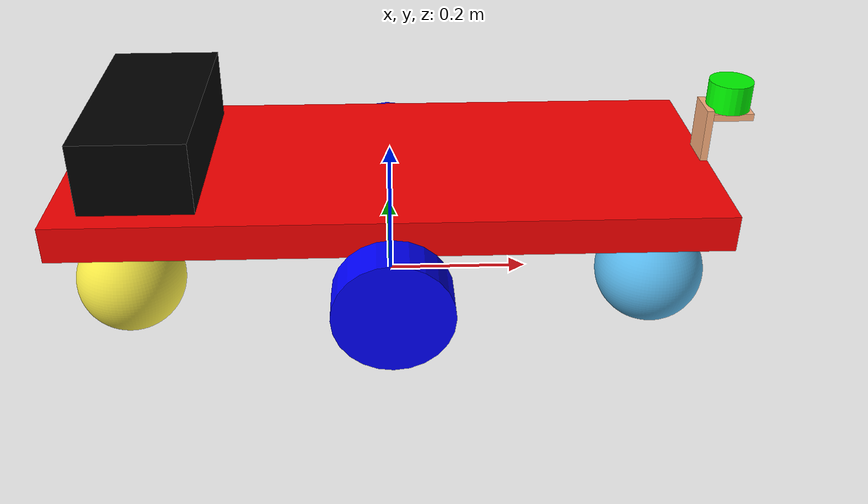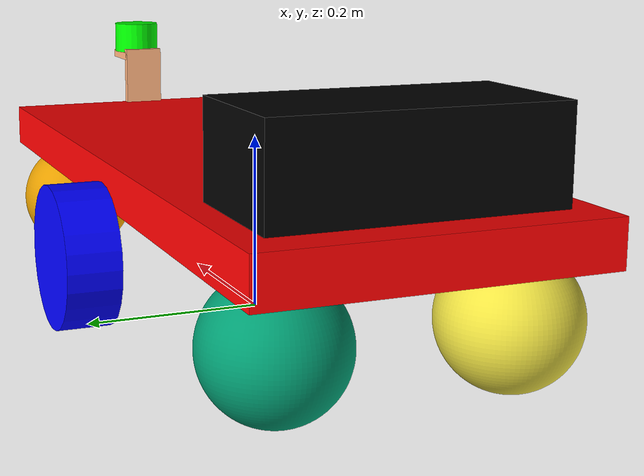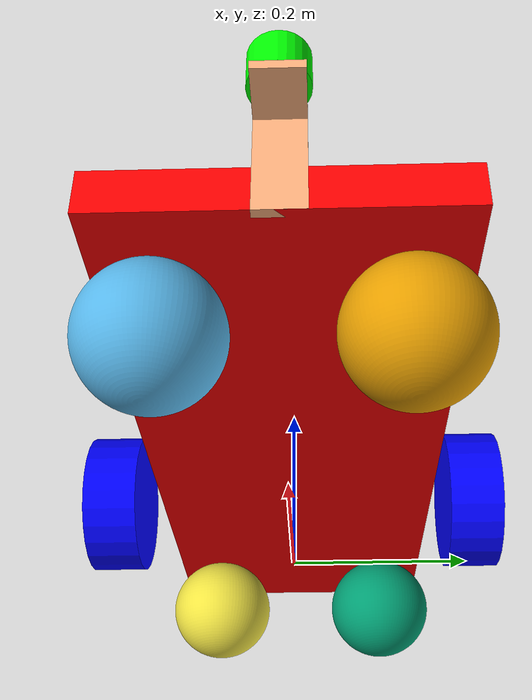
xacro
<?xml version="1.0"?>

<robot name="agribot" xmlns:xacro="http://ros.org/wiki/xacro">

  <xacro:include filename="$(find agribot_description)/urdf/agribot.gazebo" />

  <xacro:macro name="box_inertia" params="b_mass b_x b_y b_z">
    <mass value="${b_mass}" />
    <inertia ixx="${b_mass*(b_y*b_y+b_z*b_z)/12}" ixy="0" ixz="0" iyy="${b_mass*(b_x*b_x+b_z*b_z)/12}" iyz="0" izz="${b_mass*(b_x*b_x+b_y*b_y)/12}" />
  </xacro:macro>

  <xacro:macro name="cylinder_inertia" params="c_mass r l">
    <mass value="${c_mass}" />
    <inertia ixx="${c_mass*(3*r*r+l*l)/12}" ixy="0" ixz="0" iyy="${c_mass*(3*r*r+l*l)/12}" iyz="0" izz="${c_mass*(r*r)/2}" />
  </xacro:macro>

  <link name="base_footprint" />

  <link name="base_link">
    <inertial>
      <origin xyz="-0.80 0 0" rpy="0 0 0" />
      <xacro:box_inertia b_mass="20" b_x="0.885" b_y="0.36" b_z="0.05" />
    </inertial>
    <visual>
      <origin xyz="0 0 0" rpy="0 0 0" />
      <geometry>
        <box size="0.885 0.36 0.05" />
      </geometry>
      <material name="base_material">
        <color rgba="1 0 0 1" />
      </material>
    </visual>
    <collision>
      <origin xyz="0 0 0" rpy="0 0 0" />
      <geometry>
        <box size="0.885 0.36 0.05" />
      </geometry>
    </collision>
  </link>

  <link name="left_wheel">
    <origin xyz="0 0 0" rpy="0 0 0" />
    <inertial>
      <origin xyz="0 0 0" rpy="0 0 0" />
      <xacro:cylinder_inertia c_mass="2" r="0.08" l="0.06" />
    </inertial>
    <visual>
      <origin xyz="0 0 0" rpy="0 0 0" />
      <geometry>
        <cylinder length="0.06" radius="0.08" />
      </geometry>
      <material name="l_wheel">
        <color rgba="0 0 1 1" />
      </material>
    </visual>
    <collision>
      <origin xyz="0 0 0" rpy="0 0 0" />
      <geometry>
        <cylinder length="0.06" radius="0.08" />
      </geometry>
    </collision>
  </link>

  <link name="right_wheel">
    <origin xyz="0 0 0" rpy="0 0 0" />
    <inertial>
      <origin xyz="0 0 0" rpy="0 0 0" />
      <xacro:cylinder_inertia c_mass="2" r="0.08" l="0.06" />
    </inertial>
    <visual>
      <origin xyz="0 0 0" rpy="0 0 0" />
      <geometry>
        <cylinder length="0.06" radius="0.08" />
      </geometry>
      <material name="r_wheel">
        <color rgba="0 0 1 1" />
      </material>
    </visual>
    <collision>
      <origin xyz="0 0 0" rpy="0 0 0" />
      <geometry>
        <cylinder length="0.06" radius="0.08" />
      </geometry>
    </collision>
  </link>

  <link name="laser">
    <origin xyz="0 0 0" rpy="0 0 0" />
    <inertial>
      <mass value="0.09" />
      <inertia ixx="4.275e-05" ixy="0" ixz="0" iyy="4.275e-05" iyz="0" izz="5.5125e-05" />
    </inertial>
    <visual>
      <origin xyz="0 0 0" rpy="0 0 0" />
      <geometry>
        <cylinder length="0.040" radius="0.030" />
      </geometry>
      <material name="lidar_mat">
        <color rgba="0 1 0 1" />
      </material>
    </visual>
    <collision>
      <origin xyz="0 0 0" rpy="0 0 0" />
      <geometry>
        <cylinder length="0.040" radius="0.030" />
      </geometry>
    </collision>
  </link>

  <link name="laser_support_v">
    <inertial>
      <origin xyz="0 0 0" rpy="0 0 0" />
      <xacro:box_inertia b_mass="17" b_x="0.72" b_y="0.40" b_z="0.28" />
    </inertial>
    <visual>
      <origin xyz="0 0 0" rpy="0 0 0" />
      <geometry>
        <box size="0.01 0.05 0.125" />
      </geometry>
      <material name="laser_support_material">
        <color rgba="1 0.7 0.5 1" />
      </material>
    </visual>
    <collision>
      <origin xyz="0 0 0" rpy="0 0 0" />
      <geometry>
        <box size="0.01 0.05 0.125" />
      </geometry>
    </collision>
  </link>

  <link name="battery">
    <visual>
      <origin xyz="0 0 0" rpy="0 0 0" />
      <geometry>
        <box size="0.15 0.30 0.10" />
      </geometry>
      <material name="battery_material">
        <color rgba="0 0 0 1" />
      </material>
    </visual>
    <collision>
      <origin xyz="0 0 0" rpy="0 0 0" />
      <geometry>
        <box size="0.01 0.05 0" />
      </geometry>
    </collision>
  </link>

  <link name="laser_support_h">
    <inertial>
      <origin xyz="0 0 0" rpy="0 0 0" />
      <xacro:box_inertia b_mass="17" b_x="0.72" b_y="0.40" b_z="0.28" />
    </inertial>
    <visual>
      <origin xyz="0 0 0" rpy="0 0 0" />
      <geometry>
        <box size="0.06 0.05 0.01" />
      </geometry>
      <material name="laser_support_material">
        <color rgba="1 0.7 0.5 1" />
      </material>
    </visual>
    <collision>
      <origin xyz="0 0 0" rpy="0 0 0" />
      <geometry>
        <box size="0.06 0.05 0.01" />
      </geometry>
    </collision>
  </link>

  <link name="castor_f_l">

    <visual>
      <origin xyz="0 0 0" rpy="0 0 0" />
      <geometry>
        <mesh filename="package://agribot_description/meshes/castor_wheel.STL" scale="0.0012 0.0012 0.0012" />
      </geometry>

    </visual>

    <collision>
      <origin xyz="0 0 0" rpy="0 0 0" />
      <geometry>
        <mesh filename="package://agribot_description/meshes/castor_wheel.STL" scale="0.0012 0.0012 0.0012" />
      </geometry>
    </collision>

    <inertial>
      <mass value="0.30" />
      <origin xyz="0 0 0" rpy="0 0 0" />
      <inertia ixx="0.0144" ixy="0" ixz="0" iyy="0.0144" iyz="0" izz="0.0144" />
    </inertial>

  </link>

  <link name="castor_f_r">

    <visual>
      <origin xyz="0 0 0" rpy="0 0 0" />
      <geometry>
        <mesh filename="package://agribot_description/meshes/castor_wheel.STL" scale="0.0012 0.0012 0.0012" />
      </geometry>

    </visual>

    <collision>
      <origin xyz="0 0 0" rpy="0 0 0" />
      <geometry>
        <mesh filename="package://agribot_description/meshes/castor_wheel.STL" scale="0.0012 0.0012 0.0012" />
      </geometry>
    </collision>

    <inertial>
      <mass value="0.30" />
      <origin xyz="0 0 0" rpy="0 0 0" />
      <inertia ixx="0.0144" ixy="0" ixz="0" iyy="0.0144" iyz="0" izz="0.0144" />
    </inertial>

  </link>

  <link name="castor_b_l">

    <visual>
      <origin xyz="0 0 0" rpy="0 0 0" />
      <geometry>
        <mesh filename="package://agribot_description/meshes/castor_wheel.STL" scale="0.0012 0.0012 0.0012" />
      </geometry>

    </visual>

    <collision>
      <origin xyz="0 0 0" rpy="0 0 0" />
      <geometry>
        <mesh filename="package://agribot_description/meshes/castor_wheel.STL" scale="0.0012 0.0012 0.0012" />
      </geometry>
    </collision>

    <inertial>
      <mass value="0.30" />
      <origin xyz="0 0 0" rpy="0 0 0" />
      <inertia ixx="0.0144" ixy="0" ixz="0" iyy="0.0144" iyz="0" izz="0.0144" />
    </inertial>

  </link>

  <link name="castor_b_r">

    <visual>
      <origin xyz="0 0 0" rpy="0 0 0" />
      <geometry>
        <mesh filename="package://agribot_description/meshes/castor_wheel.STL" scale="0.0012 0.0012 0.0012" />
      </geometry>

    </visual>

    <collision>
      <origin xyz="0 0 0" rpy="0 0 0" />
      <geometry>
        <mesh filename="package://agribot_description/meshes/castor_wheel.STL" scale="0.0012 0.0012 0.0012" />
      </geometry>
    </collision>

    <inertial>
      <mass value="0.30" />
      <origin xyz="0 0 0" rpy="0 0 0" />
      <inertia ixx="0.0144" ixy="0" ixz="0" iyy="0.0144" iyz="0" izz="0.0144" />
    </inertial>

  </link>

  <joint name="footprint_link_joint" type="fixed">
    <parent link="base_footprint" />
    <child link="base_link" />
    <origin xyz="0 0 0.16" rpy="0 0 0" />
  </joint>

  <joint name="baselink_leftwheel" type="continuous">
    <axis xyz="0 0 1" />
    <parent link="base_link" />
    <child link="left_wheel" />
    <origin xyz="0 0.21 -0.08" rpy="1.57 0 3.14 " />
    <limit effort="300" velocity="100"/>
  </joint>

  <joint name="baselink_rightwheel" type="continuous">
    <axis xyz="0 0 1" />
    <parent link="base_link" />
    <child link="right_wheel" />
    <origin xyz="0 -0.21 -0.08" rpy="1.57 0 3.14" />
    <limit effort="300" velocity="100"/>
  </joint>

  <joint name="baselink_lidar" type="fixed">
    <parent link="base_link" />
    <child link="laser" />
    <origin xyz="0.46765 0 0.115" rpy="3.14 3.14 0" />
  </joint>

  <joint name="baselink_lidar_support_v" type="fixed">
    <parent link="base_link" />
    <child link="laser_support_v" />
    <origin xyz="0.4375 0 0.0375" rpy="3.14 3.14 0" />
  </joint>

  <joint name="baselink_lidar_support_h" type="fixed">
    <parent link="base_link" />
    <child link="laser_support_h" />
    <origin xyz="0.4675 0 0.090 " rpy="3.14 3.14 0" />
  </joint>

  <joint name="battery_1_joint" type="fixed">
    <parent link="base_link" />
    <child link="battery" />
    <origin xyz="-0.325 0 0.075 " rpy="3.14 3.14 0" />
  </joint>

  <joint name="Castor_f_l_joint" type="continuous">
    <origin xyz="0.35 0.12 -0.088035" rpy="0 0 0" />
    <parent link="base_link" />
    <child link="castor_f_l" />
    <limit effort="150" velocity="100"/>
    <dynamics damping="0.005" friction="0.1"/>
    <axis xyz="0 1 0"/>
  </joint>

  <joint name="Castor_f_r_joint" type="continuous">
    <origin xyz="0.35 -0.12 -0.088035" rpy="0 0 0" />
    <parent link="base_link" />
    <child link="castor_f_r" />
    <limit effort="150" velocity="100"/>
    <dynamics damping="0.005" friction="0.1"/>
    <axis xyz="0 1 0"/>
  </joint>

  <joint name="Castor_b_l_joint" type="continuous">
    <origin xyz="-0.35 0.12 -0.088035" rpy="0 0 0" />
    <parent link="base_link" />
    <child link="castor_b_l" />
    <limit effort="150" velocity="100"/>
    <dynamics damping="0.005" friction="0.1"/>
    <axis xyz="0 1 0"/>
  </joint>

  <joint name="Castor_b_r_joint" type="continuous">
    <origin xyz="-0.35 -0.12 -0.088035" rpy="0 0 0" />
    <parent link="base_link" />
    <child link="castor_b_r" />
    <limit effort="150" velocity="100"/>
    <dynamics damping="0.005" friction="0.1"/>
    <axis xyz="0 1 0"/>
  </joint>

</robot>
